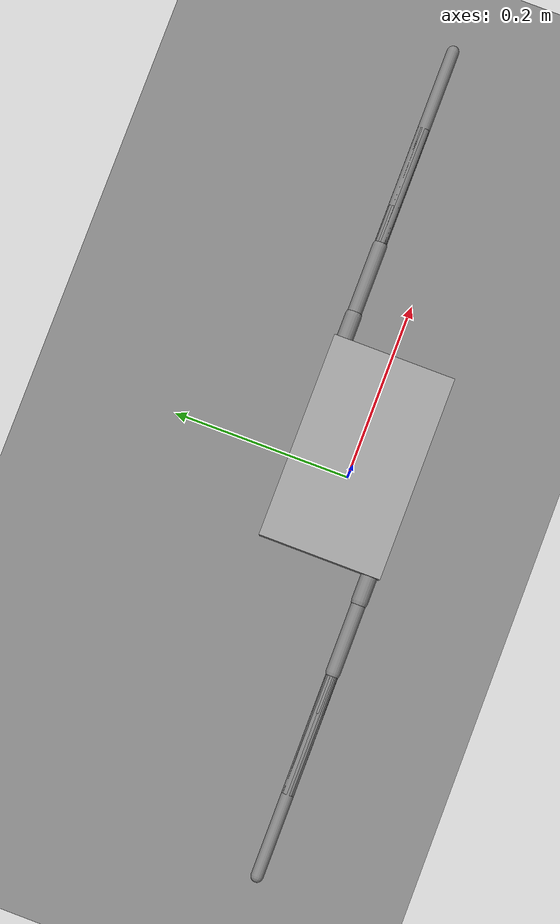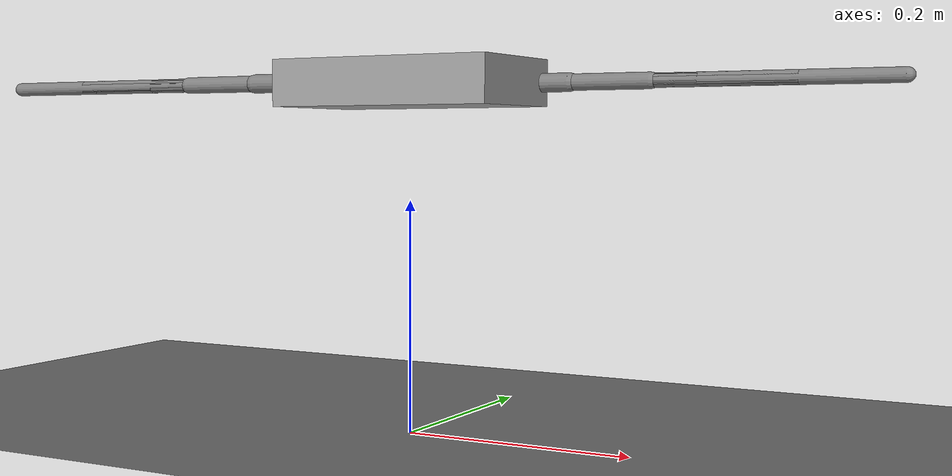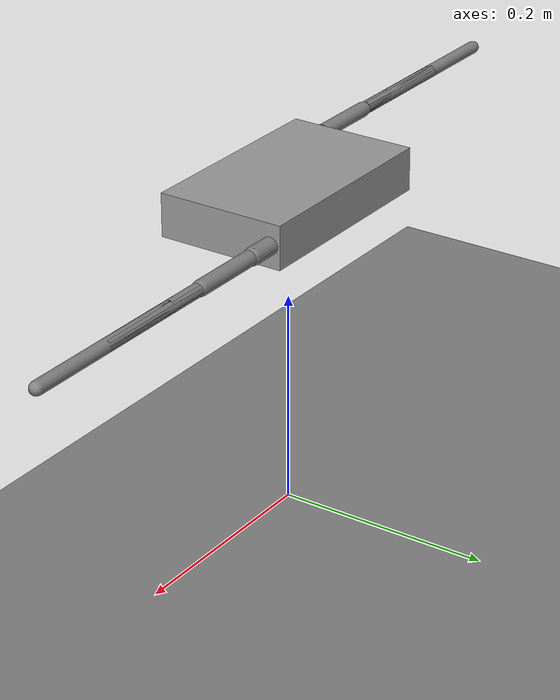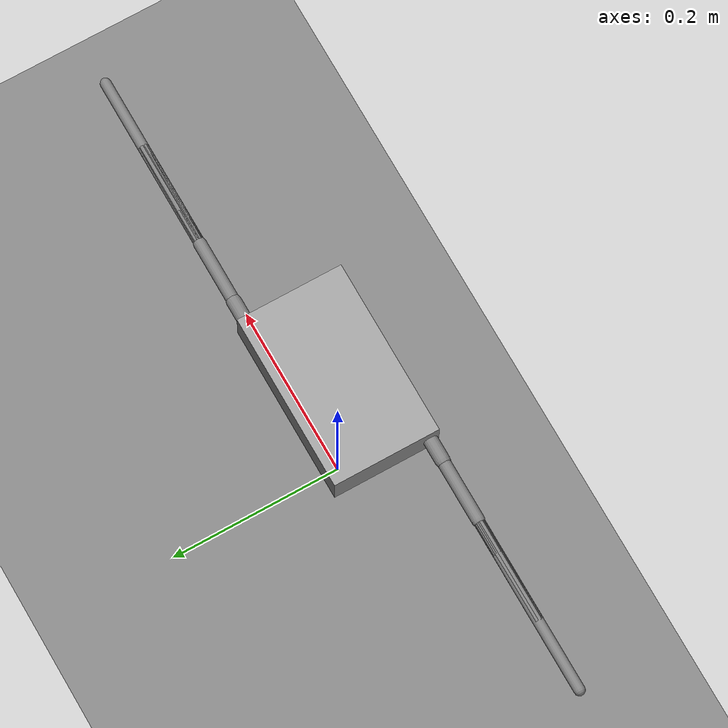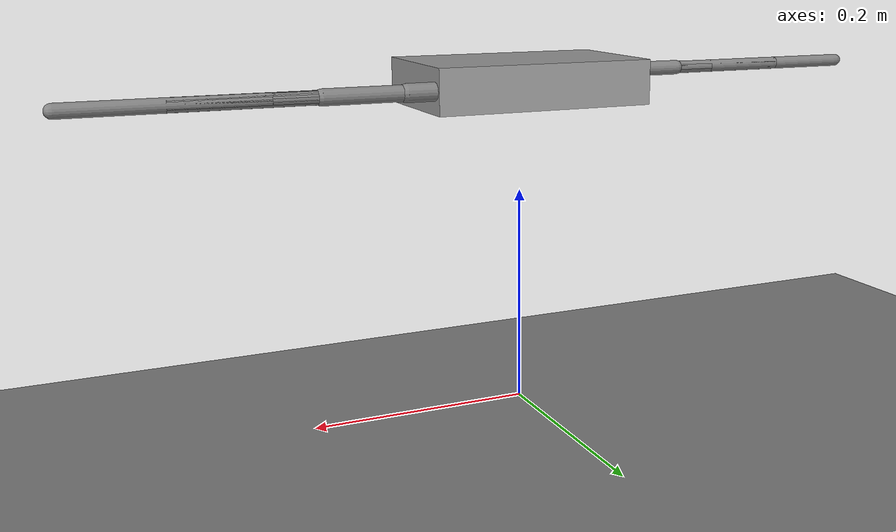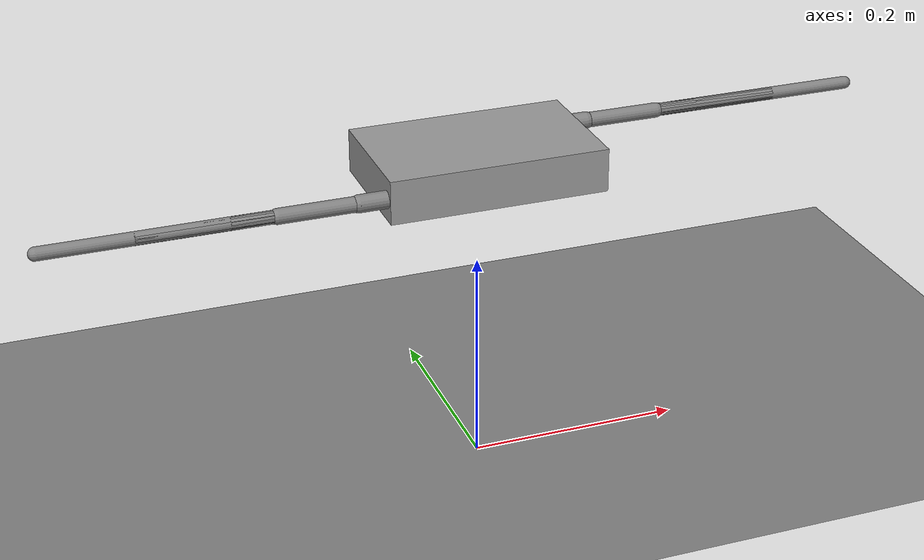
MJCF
<mujoco model="hexapod">
  <compiler angle="degree"/>
  <option gravity="0 0 -9.8"/>
  <default>
    <joint damping="1" limited="true"/>
    <geom friction="1 0.02 0.01"/>
    <position kp="50"/>
  </default>

  <worldbody>
    <light pos="0 0 2"/>
    <geom name="ground" type="plane" size="3 3 .1"/>
    <camera name="overview" pos="0 -1 0.6" xyaxes="1 0 0 0 0.5 1"/>

    <body name="body" pos="0 0 0.3">
      <freejoint/>
      <geom type="box" size="0.10 0.06 0.02" mass="2" rgba=".6 .6 .6 1"/>

      <!-- Left Front -->
      <body name="LF" pos="0.08 0.05 0">
        <joint name="LF_coxa" type="hinge" axis="0 0 1" range="0 180"/>
        <geom type="capsule" fromto="0 0 0 0.045 0 0" size="0.008"/>
        <body pos="0.045 0 0">
          <joint name="LF_femur" type="hinge" axis="0 1 0" range="-60 60"/>
          <geom type="capsule" fromto="0 0 0 0.071 0 0" size="0.007"/>
          <body pos="0.071 0 0">
            <joint name="LF_tibia" type="hinge" axis="0 1 0" range="-10 100"/>
            <geom type="capsule" fromto="0 0 0 0.20 0 0" size="0.006"/>
          </body>
        </body>
      </body>

      <!-- Right Front -->
      <body name="RF" pos="0.08 -0.05 0" euler="0 0 180">
        <joint name="RF_coxa" type="hinge" axis="0 0 1" range="0 180"/>
        <geom type="capsule" fromto="0 0 0 0.045 0 0" size="0.008"/>
        <body pos="0.045 0 0">
          <joint name="RF_femur" type="hinge" axis="0 1 0" range="-60 60"/>
          <geom type="capsule" fromto="0 0 0 0.071 0 0" size="0.007"/>
          <body pos="0.071 0 0">
            <joint name="RF_tibia" type="hinge" axis="0 1 0" range="-10 100"/>
            <geom type="capsule" fromto="0 0 0 0.20 0 0" size="0.006"/>
          </body>
        </body>
      </body>

      <!-- Middle -->
      <body name="LM" pos="0 0.05 0">
        <joint name="LM_coxa" type="hinge" axis="0 0 1" range="0 180"/>
        <geom type="capsule" fromto="0 0 0 0.045 0 0" size="0.008"/>
        <body pos="0.045 0 0">
          <joint name="LM_femur" type="hinge" axis="0 1 0" range="-60 60"/>
          <geom type="capsule" fromto="0 0 0 0.071 0 0" size="0.007"/>
          <body pos="0.071 0 0">
            <joint name="LM_tibia" type="hinge" axis="0 1 0" range="-10 100"/>
            <geom type="capsule" fromto="0 0 0 0.20 0 0" size="0.006"/>
          </body>
        </body>
      </body>

      <body name="RM" pos="0 -0.05 0" euler="0 0 180">
        <joint name="RM_coxa" type="hinge" axis="0 0 1" range="0 180"/>
        <geom type="capsule" fromto="0 0 0 0.045 0 0" size="0.008"/>
        <body pos="0.045 0 0">
          <joint name="RM_femur" type="hinge" axis="0 1 0" range="-60 60"/>
          <geom type="capsule" fromto="0 0 0 0.071 0 0" size="0.007"/>
          <body pos="0.071 0 0">
            <joint name="RM_tibia" type="hinge" axis="0 1 0" range="-10 100"/>
            <geom type="capsule" fromto="0 0 0 0.20 0 0" size="0.006"/>
          </body>
        </body>
      </body>

      <!-- Rear -->
      <body name="LR" pos="-0.08 0.05 0">
        <joint name="LR_coxa" type="hinge" axis="0 0 1" range="0 180"/>
        <geom type="capsule" fromto="0 0 0 0.045 0 0" size="0.008"/>
        <body pos="0.045 0 0">
          <joint name="LR_femur" type="hinge" axis="0 1 0" range="-60 60"/>
          <geom type="capsule" fromto="0 0 0 0.071 0 0" size="0.007"/>
          <body pos="0.071 0 0">
            <joint name="LR_tibia" type="hinge" axis="0 1 0" range="-10 100"/>
            <geom type="capsule" fromto="0 0 0 0.20 0 0" size="0.006"/>
          </body>
        </body>
      </body>

      <body name="RR" pos="-0.08 -0.05 0" euler="0 0 180">
        <joint name="RR_coxa" type="hinge" axis="0 0 1" range="0 180"/>
        <geom type="capsule" fromto="0 0 0 0.045 0 0" size="0.008"/>
        <body pos="0.045 0 0">
          <joint name="RR_femur" type="hinge" axis="0 1 0" range="-60 60"/>
          <geom type="capsule" fromto="0 0 0 0.071 0 0" size="0.007"/>
          <body pos="0.071 0 0">
            <joint name="RR_tibia" type="hinge" axis="0 1 0" range="-10 100"/>
            <geom type="capsule" fromto="0 0 0 0.20 0 0" size="0.006"/>
          </body>
        </body>
      </body>

    </body>
  </worldbody>

  <actuator>
    <position name="LF_coxa_servo" joint="LF_coxa" kp="10" ctrllimited="true" ctrlrange="-3.14 3.14"/>
    <position name="LF_femur_servo" joint="LF_femur" kp="10" ctrllimited="true" ctrlrange="-3.14 3.14"/>
    <position name="LF_tibia_servo" joint="LF_tibia" kp="10" ctrllimited="true" ctrlrange="-3.14 3.14"/>
    <position name="RF_coxa_servo" joint="RF_coxa" kp="10" ctrllimited="true" ctrlrange="-3.14 3.14"/>
    <position name="RF_femur_servo" joint="RF_femur" kp="10" ctrllimited="true" ctrlrange="-3.14 3.14"/>
    <position name="RF_tibia_servo" joint="RF_tibia" kp="10" ctrllimited="true" ctrlrange="-3.14 3.14"/>
    <position name="LM_coxa_servo" joint="LM_coxa" kp="10" ctrllimited="true" ctrlrange="-3.14 3.14"/>
    <position name="LM_femur_servo" joint="LM_femur" kp="10" ctrllimited="true" ctrlrange="-3.14 3.14"/>
    <position name="LM_tibia_servo" joint="LM_tibia" kp="10" ctrllimited="true" ctrlrange="-3.14 3.14"/>
    <position name="RM_coxa_servo" joint="RM_coxa" kp="10" ctrllimited="true" ctrlrange="-3.14 3.14"/>
    <position name="RM_femur_servo" joint="RM_femur" kp="10" ctrllimited="true" ctrlrange="-3.14 3.14"/>
    <position name="RM_tibia_servo" joint="RM_tibia" kp="10" ctrllimited="true" ctrlrange="-3.14 3.14"/>
    <position name="LR_coxa_servo" joint="LR_coxa" kp="10" ctrllimited="true" ctrlrange="-3.14 3.14"/>
    <position name="LR_femur_servo" joint="LR_femur" kp="10" ctrllimited="true" ctrlrange="-3.14 3.14"/>
    <position name="LR_tibia_servo" joint="LR_tibia" kp="10" ctrllimited="true" ctrlrange="-3.14 3.14"/>
    <position name="RR_coxa_servo" joint="RR_coxa" kp="10" ctrllimited="true" ctrlrange="-3.14 3.14"/>
    <position name="RR_femur_servo" joint="RR_femur" kp="10" ctrllimited="true" ctrlrange="-3.14 3.14"/>
    <position name="RR_tibia_servo" joint="RR_tibia" kp="10" ctrllimited="true" ctrlrange="-3.14 3.14"/>
  </actuator>
</mujoco>
